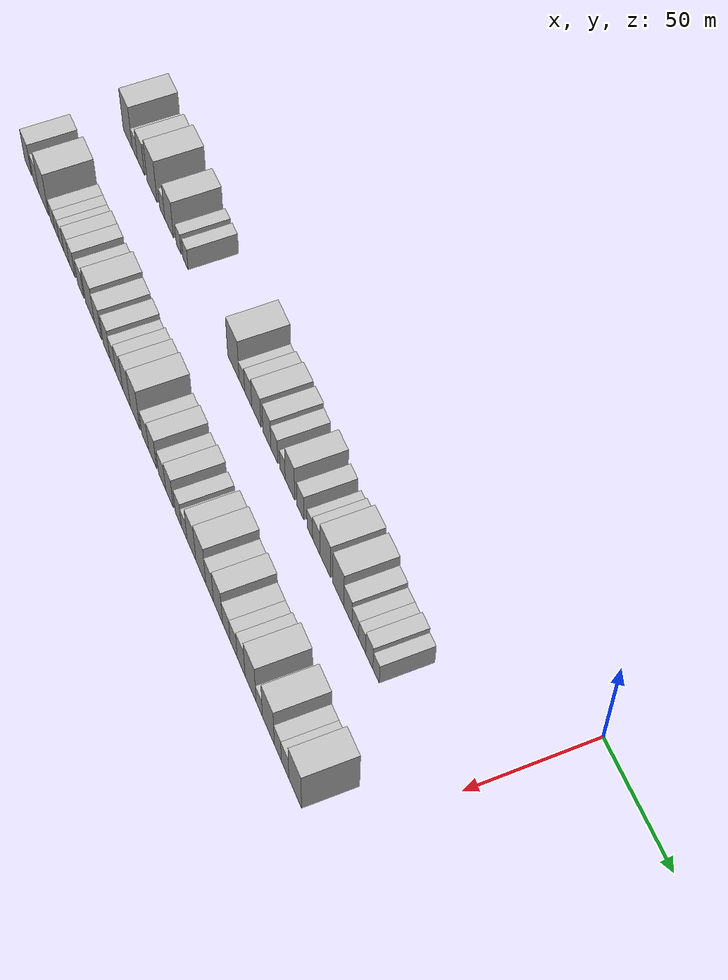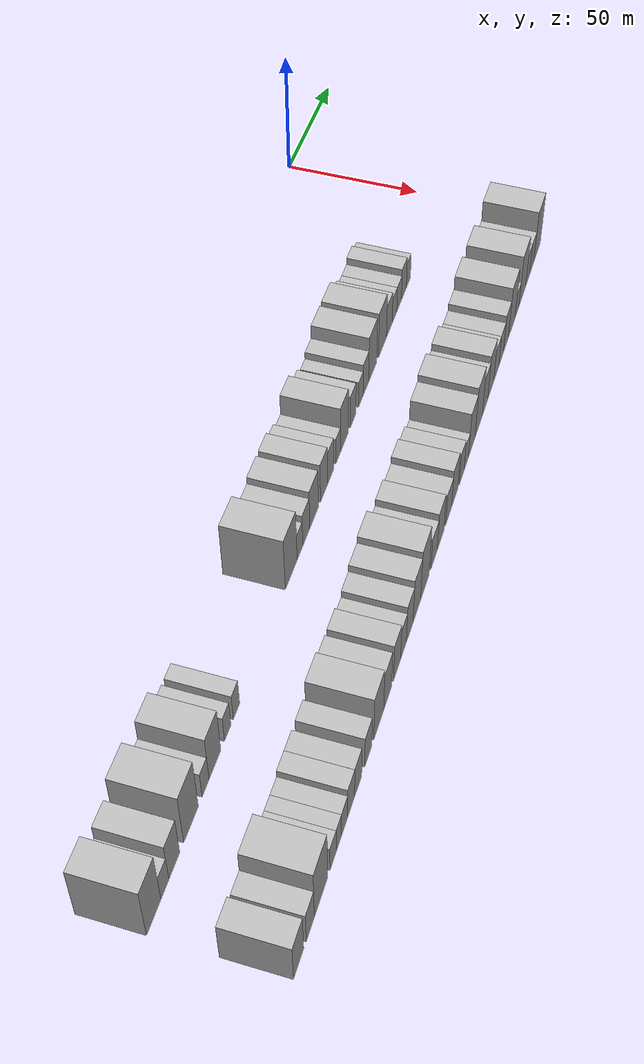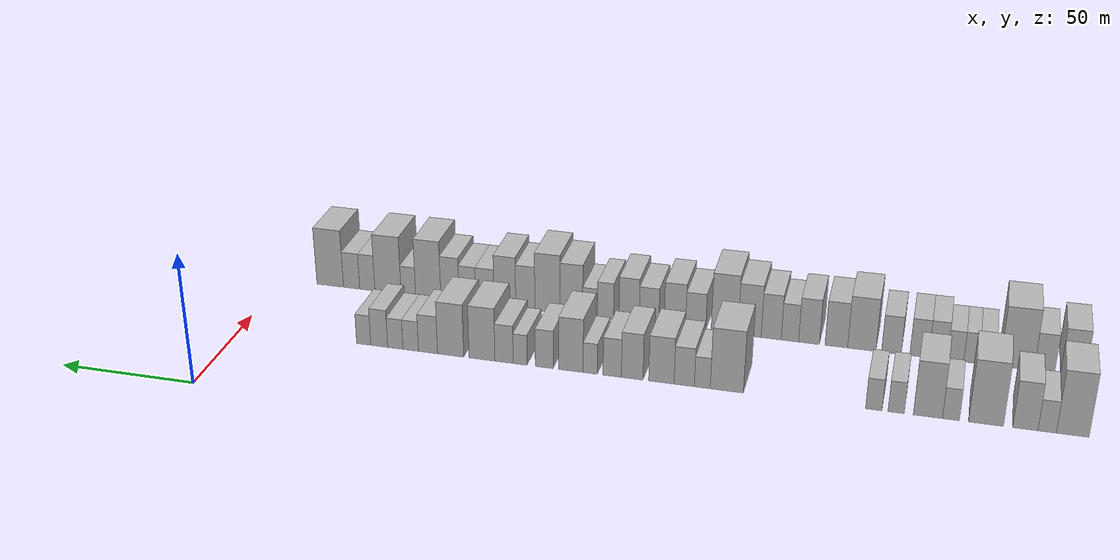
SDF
<sdf version="1.6">
 <world name="default">
  <model name="building_1">
   <static>1</static>
   <pose>50.0000 -294.8187 0 0.000000 0.000000 0.000000</pose>
   <link name="link">
    <pose>0 0 12.00 0 0 0</pose>
    <collision name="collision"><geometry><box><size>20.0000 10.3627 24.0000</size></box></geometry></collision>
    <visual name="visual">
     <cast_shadows>0</cast_shadows>
     <geometry><box><size>20.0000 10.3627 24.0000</size></box></geometry>
     <material>
      <script>
       <uri>model://HANNAS_wall/materials/scripts</uri>
       <uri>model://HANNAS_wall/materials/textures</uri>
       <name>vrc/HANNAS_wall</name>
      </script>
     </material>
    </visual>
   </link>
  </model>
  <model name="building_2">
   <static>1</static>
   <pose>50.0000 -286.7062 0 0.000000 0.000000 0.000000</pose>
   <link name="link">
    <pose>0 0 6.00 0 0 0</pose>
    <collision name="collision"><geometry><box><size>20.0000 5.8622 12.0000</size></box></geometry></collision>
    <visual name="visual">
     <cast_shadows>0</cast_shadows>
     <geometry><box><size>20.0000 5.8622 12.0000</size></box></geometry>
     <material>
      <script>
       <uri>model://HANNAS_wall/materials/scripts</uri>
       <uri>model://HANNAS_wall/materials/textures</uri>
       <name>vrc/HANNAS_wall</name>
      </script>
     </material>
    </visual>
   </link>
  </model>
  <model name="building_3">
   <static>1</static>
   <pose>50.0000 -279.7250 0 0.000000 0.000000 0.000000</pose>
   <link name="link">
    <pose>0 0 9.00 0 0 0</pose>
    <collision name="collision"><geometry><box><size>20.0000 8.1002 18.0000</size></box></geometry></collision>
    <visual name="visual">
     <cast_shadows>0</cast_shadows>
     <geometry><box><size>20.0000 8.1002 18.0000</size></box></geometry>
     <material>
      <script>
       <uri>model://HANNAS_wall/materials/scripts</uri>
       <uri>model://HANNAS_wall/materials/textures</uri>
       <name>vrc/HANNAS_wall</name>
      </script>
     </material>
    </visual>
   </link>
  </model>
  <model name="building_4">
   <static>1</static>
   <pose>50.0000 -267.0252 0 0.000000 0.000000 0.000000</pose>
   <link name="link">
    <pose>0 0 12.00 0 0 0</pose>
    <collision name="collision"><geometry><box><size>20.0000 11.2994 24.0000</size></box></geometry></collision>
    <visual name="visual">
     <cast_shadows>0</cast_shadows>
     <geometry><box><size>20.0000 11.2994 24.0000</size></box></geometry>
     <material>
      <script>
       <uri>model://HANNAS_wall/materials/scripts</uri>
       <uri>model://HANNAS_wall/materials/textures</uri>
       <name>vrc/HANNAS_wall</name>
      </script>
     </material>
    </visual>
   </link>
  </model>
  <model name="building_5">
   <static>1</static>
   <pose>50.0000 -255.5983 0 0.000000 0.000000 0.000000</pose>
   <link name="link">
    <pose>0 0 6.00 0 0 0</pose>
    <collision name="collision"><geometry><box><size>20.0000 5.5545 12.0000</size></box></geometry></collision>
    <visual name="visual">
     <cast_shadows>0</cast_shadows>
     <geometry><box><size>20.0000 5.5545 12.0000</size></box></geometry>
     <material>
      <script>
       <uri>model://HANNAS_wall/materials/scripts</uri>
       <uri>model://HANNAS_wall/materials/textures</uri>
       <name>vrc/HANNAS_wall</name>
      </script>
     </material>
    </visual>
   </link>
  </model>
  <model name="building_6">
   <static>1</static>
   <pose>50.0000 -248.0310 0 0.000000 0.000000 0.000000</pose>
   <link name="link">
    <pose>0 0 10.50 0 0 0</pose>
    <collision name="collision"><geometry><box><size>20.0000 9.5799 21.0000</size></box></geometry></collision>
    <visual name="visual">
     <cast_shadows>0</cast_shadows>
     <geometry><box><size>20.0000 9.5799 21.0000</size></box></geometry>
     <material>
      <script>
       <uri>model://HANNAS_wall/materials/scripts</uri>
       <uri>model://HANNAS_wall/materials/textures</uri>
       <name>vrc/HANNAS_wall</name>
      </script>
     </material>
    </visual>
   </link>
  </model>
  <model name="building_7">
   <static>1</static>
   <pose>50.0000 -237.5482 0 0.000000 0.000000 0.000000</pose>
   <link name="link">
    <pose>0 0 6.00 0 0 0</pose>
    <collision name="collision"><geometry><box><size>20.0000 5.3857 12.0000</size></box></geometry></collision>
    <visual name="visual">
     <cast_shadows>0</cast_shadows>
     <geometry><box><size>20.0000 5.3857 12.0000</size></box></geometry>
     <material>
      <script>
       <uri>model://HANNAS_wall/materials/scripts</uri>
       <uri>model://HANNAS_wall/materials/textures</uri>
       <name>vrc/HANNAS_wall</name>
      </script>
     </material>
    </visual>
   </link>
  </model>
  <model name="building_8">
   <static>1</static>
   <pose>50.0000 -230.1114 0 0.000000 0.000000 0.000000</pose>
   <link name="link">
    <pose>0 0 6.00 0 0 0</pose>
    <collision name="collision"><geometry><box><size>20.0000 5.4879 12.0000</size></box></geometry></collision>
    <visual name="visual">
     <cast_shadows>0</cast_shadows>
     <geometry><box><size>20.0000 5.4879 12.0000</size></box></geometry>
     <material>
      <script>
       <uri>model://HANNAS_wall/materials/scripts</uri>
       <uri>model://HANNAS_wall/materials/textures</uri>
       <name>vrc/HANNAS_wall</name>
      </script>
     </material>
    </visual>
   </link>
  </model>
  <model name="building_9">
   <static>1</static>
   <pose>50.0000 -180.0777 0 0.000000 0.000000 0.000000</pose>
   <link name="link">
    <pose>0 0 12.00 0 0 0</pose>
    <collision name="collision"><geometry><box><size>20.0000 11.5265 24.0000</size></box></geometry></collision>
    <visual name="visual">
     <cast_shadows>0</cast_shadows>
     <geometry><box><size>20.0000 11.5265 24.0000</size></box></geometry>
     <material>
      <script>
       <uri>model://HANNAS_wall/materials/scripts</uri>
       <uri>model://HANNAS_wall/materials/textures</uri>
       <name>vrc/HANNAS_wall</name>
      </script>
     </material>
    </visual>
   </link>
  </model>
  <model name="building_10">
   <static>1</static>
   <pose>50.0000 -171.5470 0 0.000000 0.000000 0.000000</pose>
   <link name="link">
    <pose>0 0 6.00 0 0 0</pose>
    <collision name="collision"><geometry><box><size>20.0000 5.5348 12.0000</size></box></geometry></collision>
    <visual name="visual">
     <cast_shadows>0</cast_shadows>
     <geometry><box><size>20.0000 5.5348 12.0000</size></box></geometry>
     <material>
      <script>
       <uri>model://HANNAS_wall/materials/scripts</uri>
       <uri>model://HANNAS_wall/materials/textures</uri>
       <name>vrc/HANNAS_wall</name>
      </script>
     </material>
    </visual>
   </link>
  </model>
  <model name="building_11">
   <static>1</static>
   <pose>50.0000 -165.2122 0 0.000000 0.000000 0.000000</pose>
   <link name="link">
    <pose>0 0 7.50 0 0 0</pose>
    <collision name="collision"><geometry><box><size>20.0000 7.1348 15.0000</size></box></geometry></collision>
    <visual name="visual">
     <cast_shadows>0</cast_shadows>
     <geometry><box><size>20.0000 7.1348 15.0000</size></box></geometry>
     <material>
      <script>
       <uri>model://HANNAS_wall/materials/scripts</uri>
       <uri>model://HANNAS_wall/materials/textures</uri>
       <name>vrc/HANNAS_wall</name>
      </script>
     </material>
    </visual>
   </link>
  </model>
  <model name="building_12">
   <static>1</static>
   <pose>50.0000 -157.1682 0 0.000000 0.000000 0.000000</pose>
   <link name="link">
    <pose>0 0 9.00 0 0 0</pose>
    <collision name="collision"><geometry><box><size>20.0000 8.9532 18.0000</size></box></geometry></collision>
    <visual name="visual">
     <cast_shadows>0</cast_shadows>
     <geometry><box><size>20.0000 8.9532 18.0000</size></box></geometry>
     <material>
      <script>
       <uri>model://HANNAS_wall/materials/scripts</uri>
       <uri>model://HANNAS_wall/materials/textures</uri>
       <name>vrc/HANNAS_wall</name>
      </script>
     </material>
    </visual>
   </link>
  </model>
  <model name="building_13">
   <static>1</static>
   <pose>50.0000 -146.8314 0 0.000000 0.000000 0.000000</pose>
   <link name="link">
    <pose>0 0 9.00 0 0 0</pose>
    <collision name="collision"><geometry><box><size>20.0000 7.7205 18.0000</size></box></geometry></collision>
    <visual name="visual">
     <cast_shadows>0</cast_shadows>
     <geometry><box><size>20.0000 7.7205 18.0000</size></box></geometry>
     <material>
      <script>
       <uri>model://HANNAS_wall/materials/scripts</uri>
       <uri>model://HANNAS_wall/materials/textures</uri>
       <name>vrc/HANNAS_wall</name>
      </script>
     </material>
    </visual>
   </link>
  </model>
  <model name="building_14">
   <static>1</static>
   <pose>50.0000 -139.6915 0 0.000000 0.000000 0.000000</pose>
   <link name="link">
    <pose>0 0 7.50 0 0 0</pose>
    <collision name="collision"><geometry><box><size>20.0000 6.5593 15.0000</size></box></geometry></collision>
    <visual name="visual">
     <cast_shadows>0</cast_shadows>
     <geometry><box><size>20.0000 6.5593 15.0000</size></box></geometry>
     <material>
      <script>
       <uri>model://HANNAS_wall/materials/scripts</uri>
       <uri>model://HANNAS_wall/materials/textures</uri>
       <name>vrc/HANNAS_wall</name>
      </script>
     </material>
    </visual>
   </link>
  </model>
  <model name="building_15">
   <static>1</static>
   <pose>50.0000 -131.8465 0 0.000000 0.000000 0.000000</pose>
   <link name="link">
    <pose>0 0 6.00 0 0 0</pose>
    <collision name="collision"><geometry><box><size>20.0000 5.1307 12.0000</size></box></geometry></collision>
    <visual name="visual">
     <cast_shadows>0</cast_shadows>
     <geometry><box><size>20.0000 5.1307 12.0000</size></box></geometry>
     <material>
      <script>
       <uri>model://HANNAS_wall/materials/scripts</uri>
       <uri>model://HANNAS_wall/materials/textures</uri>
       <name>vrc/HANNAS_wall</name>
      </script>
     </material>
    </visual>
   </link>
  </model>
  <model name="building_16">
   <static>1</static>
   <pose>50.0000 -124.8556 0 0.000000 0.000000 0.000000</pose>
   <link name="link">
    <pose>0 0 10.50 0 0 0</pose>
    <collision name="collision"><geometry><box><size>20.0000 8.8511 21.0000</size></box></geometry></collision>
    <visual name="visual">
     <cast_shadows>0</cast_shadows>
     <geometry><box><size>20.0000 8.8511 21.0000</size></box></geometry>
     <material>
      <script>
       <uri>model://HANNAS_wall/materials/scripts</uri>
       <uri>model://HANNAS_wall/materials/textures</uri>
       <name>vrc/HANNAS_wall</name>
      </script>
     </material>
    </visual>
   </link>
  </model>
  <model name="building_17">
   <static>1</static>
   <pose>50.0000 -115.1703 0 0.000000 0.000000 0.000000</pose>
   <link name="link">
    <pose>0 0 7.50 0 0 0</pose>
    <collision name="collision"><geometry><box><size>20.0000 6.5195 15.0000</size></box></geometry></collision>
    <visual name="visual">
     <cast_shadows>0</cast_shadows>
     <geometry><box><size>20.0000 6.5195 15.0000</size></box></geometry>
     <material>
      <script>
       <uri>model://HANNAS_wall/materials/scripts</uri>
       <uri>model://HANNAS_wall/materials/textures</uri>
       <name>vrc/HANNAS_wall</name>
      </script>
     </material>
    </visual>
   </link>
  </model>
  <model name="building_18">
   <static>1</static>
   <pose>50.0000 -106.3521 0 0.000000 0.000000 0.000000</pose>
   <link name="link">
    <pose>0 0 6.00 0 0 0</pose>
    <collision name="collision"><geometry><box><size>20.0000 5.1170 12.0000</size></box></geometry></collision>
    <visual name="visual">
     <cast_shadows>0</cast_shadows>
     <geometry><box><size>20.0000 5.1170 12.0000</size></box></geometry>
     <material>
      <script>
       <uri>model://HANNAS_wall/materials/scripts</uri>
       <uri>model://HANNAS_wall/materials/textures</uri>
       <name>vrc/HANNAS_wall</name>
      </script>
     </material>
    </visual>
   </link>
  </model>
  <model name="building_19">
   <static>1</static>
   <pose>50.0000 -100.4487 0 0.000000 0.000000 0.000000</pose>
   <link name="link">
    <pose>0 0 7.50 0 0 0</pose>
    <collision name="collision"><geometry><box><size>20.0000 6.6897 15.0000</size></box></geometry></collision>
    <visual name="visual">
     <cast_shadows>0</cast_shadows>
     <geometry><box><size>20.0000 6.6897 15.0000</size></box></geometry>
     <material>
      <script>
       <uri>model://HANNAS_wall/materials/scripts</uri>
       <uri>model://HANNAS_wall/materials/textures</uri>
       <name>vrc/HANNAS_wall</name>
      </script>
     </material>
    </visual>
   </link>
  </model>
  <model name="building_20">
   <static>1</static>
   <pose>50.0000 -92.3190 0 0.000000 0.000000 0.000000</pose>
   <link name="link">
    <pose>0 0 10.50 0 0 0</pose>
    <collision name="collision"><geometry><box><size>20.0000 9.5698 21.0000</size></box></geometry></collision>
    <visual name="visual">
     <cast_shadows>0</cast_shadows>
     <geometry><box><size>20.0000 9.5698 21.0000</size></box></geometry>
     <material>
      <script>
       <uri>model://HANNAS_wall/materials/scripts</uri>
       <uri>model://HANNAS_wall/materials/textures</uri>
       <name>vrc/HANNAS_wall</name>
      </script>
     </material>
    </visual>
   </link>
  </model>
  <model name="building_21">
   <static>1</static>
   <pose>50.0000 -80.6359 0 0.000000 0.000000 0.000000</pose>
   <link name="link">
    <pose>0 0 10.50 0 0 0</pose>
    <collision name="collision"><geometry><box><size>20.0000 9.7964 21.0000</size></box></geometry></collision>
    <visual name="visual">
     <cast_shadows>0</cast_shadows>
     <geometry><box><size>20.0000 9.7964 21.0000</size></box></geometry>
     <material>
      <script>
       <uri>model://HANNAS_wall/materials/scripts</uri>
       <uri>model://HANNAS_wall/materials/textures</uri>
       <name>vrc/HANNAS_wall</name>
      </script>
     </material>
    </visual>
   </link>
  </model>
  <model name="building_22">
   <static>1</static>
   <pose>50.0000 -72.1522 0 0.000000 0.000000 0.000000</pose>
   <link name="link">
    <pose>0 0 7.50 0 0 0</pose>
    <collision name="collision"><geometry><box><size>20.0000 7.1708 15.0000</size></box></geometry></collision>
    <visual name="visual">
     <cast_shadows>0</cast_shadows>
     <geometry><box><size>20.0000 7.1708 15.0000</size></box></geometry>
     <material>
      <script>
       <uri>model://HANNAS_wall/materials/scripts</uri>
       <uri>model://HANNAS_wall/materials/textures</uri>
       <name>vrc/HANNAS_wall</name>
      </script>
     </material>
    </visual>
   </link>
  </model>
  <model name="building_23">
   <static>1</static>
   <pose>50.0000 -65.6227 0 0.000000 0.000000 0.000000</pose>
   <link name="link">
    <pose>0 0 6.00 0 0 0</pose>
    <collision name="collision"><geometry><box><size>20.0000 5.8883 12.0000</size></box></geometry></collision>
    <visual name="visual">
     <cast_shadows>0</cast_shadows>
     <geometry><box><size>20.0000 5.8883 12.0000</size></box></geometry>
     <material>
      <script>
       <uri>model://HANNAS_wall/materials/scripts</uri>
       <uri>model://HANNAS_wall/materials/textures</uri>
       <name>vrc/HANNAS_wall</name>
      </script>
     </material>
    </visual>
   </link>
  </model>
  <model name="building_24">
   <static>1</static>
   <pose>50.0000 -59.7776 0 0.000000 0.000000 0.000000</pose>
   <link name="link">
    <pose>0 0 6.00 0 0 0</pose>
    <collision name="collision"><geometry><box><size>20.0000 5.8018 12.0000</size></box></geometry></collision>
    <visual name="visual">
     <cast_shadows>0</cast_shadows>
     <geometry><box><size>20.0000 5.8018 12.0000</size></box></geometry>
     <material>
      <script>
       <uri>model://HANNAS_wall/materials/scripts</uri>
       <uri>model://HANNAS_wall/materials/textures</uri>
       <name>vrc/HANNAS_wall</name>
      </script>
     </material>
    </visual>
   </link>
  </model>
  <model name="building_25">
   <static>1</static>
   <pose>50.0000 -53.6754 0 0.000000 0.000000 0.000000</pose>
   <link name="link">
    <pose>0 0 7.50 0 0 0</pose>
    <collision name="collision"><geometry><box><size>20.0000 6.4025 15.0000</size></box></geometry></collision>
    <visual name="visual">
     <cast_shadows>0</cast_shadows>
     <geometry><box><size>20.0000 6.4025 15.0000</size></box></geometry>
     <material>
      <script>
       <uri>model://HANNAS_wall/materials/scripts</uri>
       <uri>model://HANNAS_wall/materials/textures</uri>
       <name>vrc/HANNAS_wall</name>
      </script>
     </material>
    </visual>
   </link>
  </model>
  <model name="building_26">
   <static>1</static>
   <pose>50.0000 -47.7760 0 0.000000 0.000000 0.000000</pose>
   <link name="link">
    <pose>0 0 6.00 0 0 0</pose>
    <collision name="collision"><geometry><box><size>20.0000 5.3963 12.0000</size></box></geometry></collision>
    <visual name="visual">
     <cast_shadows>0</cast_shadows>
     <geometry><box><size>20.0000 5.3963 12.0000</size></box></geometry>
     <material>
      <script>
       <uri>model://HANNAS_wall/materials/scripts</uri>
       <uri>model://HANNAS_wall/materials/textures</uri>
       <name>vrc/HANNAS_wall</name>
      </script>
     </material>
    </visual>
   </link>
  </model>
  <model name="building_58">
   <static>1</static>
   <pose>90.0000 -295.7840 0 0.000000 0.000000 0.000000</pose>
   <link name="link">
    <pose>0 0 9.00 0 0 0</pose>
    <collision name="collision"><geometry><box><size>20.0000 8.4320 18.0000</size></box></geometry></collision>
    <visual name="visual">
     <cast_shadows>0</cast_shadows>
     <geometry><box><size>20.0000 8.4320 18.0000</size></box></geometry>
     <material>
      <script>
       <uri>model://HANNAS_wall/materials/scripts</uri>
       <uri>model://HANNAS_wall/materials/textures</uri>
       <name>vrc/HANNAS_wall</name>
      </script>
     </material>
    </visual>
   </link>
  </model>
  <model name="building_59">
   <static>1</static>
   <pose>90.0000 -286.0705 0 0.000000 0.000000 0.000000</pose>
   <link name="link">
    <pose>0 0 7.50 0 0 0</pose>
    <collision name="collision"><geometry><box><size>20.0000 6.9950 15.0000</size></box></geometry></collision>
    <visual name="visual">
     <cast_shadows>0</cast_shadows>
     <geometry><box><size>20.0000 6.9950 15.0000</size></box></geometry>
     <material>
      <script>
       <uri>model://HANNAS_wall/materials/scripts</uri>
       <uri>model://HANNAS_wall/materials/textures</uri>
       <name>vrc/HANNAS_wall</name>
      </script>
     </material>
    </visual>
   </link>
  </model>
  <model name="building_60">
   <static>1</static>
   <pose>90.0000 -276.7287 0 0.000000 0.000000 0.000000</pose>
   <link name="link">
    <pose>0 0 12.00 0 0 0</pose>
    <collision name="collision"><geometry><box><size>20.0000 11.6887 24.0000</size></box></geometry></collision>
    <visual name="visual">
     <cast_shadows>0</cast_shadows>
     <geometry><box><size>20.0000 11.6887 24.0000</size></box></geometry>
     <material>
      <script>
       <uri>model://HANNAS_wall/materials/scripts</uri>
       <uri>model://HANNAS_wall/materials/textures</uri>
       <name>vrc/HANNAS_wall</name>
      </script>
     </material>
    </visual>
   </link>
  </model>
  <model name="building_61">
   <static>1</static>
   <pose>90.0000 -266.0623 0 0.000000 0.000000 0.000000</pose>
   <link name="link">
    <pose>0 0 6.00 0 0 0</pose>
    <collision name="collision"><geometry><box><size>20.0000 5.6441 12.0000</size></box></geometry></collision>
    <visual name="visual">
     <cast_shadows>0</cast_shadows>
     <geometry><box><size>20.0000 5.6441 12.0000</size></box></geometry>
     <material>
      <script>
       <uri>model://HANNAS_wall/materials/scripts</uri>
       <uri>model://HANNAS_wall/materials/textures</uri>
       <name>vrc/HANNAS_wall</name>
      </script>
     </material>
    </visual>
   </link>
  </model>
  <model name="building_62">
   <static>1</static>
   <pose>90.0000 -260.8113 0 0.000000 0.000000 0.000000</pose>
   <link name="link">
    <pose>0 0 6.00 0 0 0</pose>
    <collision name="collision"><geometry><box><size>20.0000 4.8578 12.0000</size></box></geometry></collision>
    <visual name="visual">
     <cast_shadows>0</cast_shadows>
     <geometry><box><size>20.0000 4.8578 12.0000</size></box></geometry>
     <material>
      <script>
       <uri>model://HANNAS_wall/materials/scripts</uri>
       <uri>model://HANNAS_wall/materials/textures</uri>
       <name>vrc/HANNAS_wall</name>
      </script>
     </material>
    </visual>
   </link>
  </model>
  <model name="building_63">
   <static>1</static>
   <pose>90.0000 -255.5425 0 0.000000 0.000000 0.000000</pose>
   <link name="link">
    <pose>0 0 6.00 0 0 0</pose>
    <collision name="collision"><geometry><box><size>20.0000 5.6797 12.0000</size></box></geometry></collision>
    <visual name="visual">
     <cast_shadows>0</cast_shadows>
     <geometry><box><size>20.0000 5.6797 12.0000</size></box></geometry>
     <material>
      <script>
       <uri>model://HANNAS_wall/materials/scripts</uri>
       <uri>model://HANNAS_wall/materials/textures</uri>
       <name>vrc/HANNAS_wall</name>
      </script>
     </material>
    </visual>
   </link>
  </model>
  <model name="building_64">
   <static>1</static>
   <pose>90.0000 -249.4486 0 0.000000 0.000000 0.000000</pose>
   <link name="link">
    <pose>0 0 7.50 0 0 0</pose>
    <collision name="collision"><geometry><box><size>20.0000 6.5082 15.0000</size></box></geometry></collision>
    <visual name="visual">
     <cast_shadows>0</cast_shadows>
     <geometry><box><size>20.0000 6.5082 15.0000</size></box></geometry>
     <material>
      <script>
       <uri>model://HANNAS_wall/materials/scripts</uri>
       <uri>model://HANNAS_wall/materials/textures</uri>
       <name>vrc/HANNAS_wall</name>
      </script>
     </material>
    </visual>
   </link>
  </model>
  <model name="building_65">
   <static>1</static>
   <pose>90.0000 -242.8609 0 0.000000 0.000000 0.000000</pose>
   <link name="link">
    <pose>0 0 7.50 0 0 0</pose>
    <collision name="collision"><geometry><box><size>20.0000 6.6670 15.0000</size></box></geometry></collision>
    <visual name="visual">
     <cast_shadows>0</cast_shadows>
     <geometry><box><size>20.0000 6.6670 15.0000</size></box></geometry>
     <material>
      <script>
       <uri>model://HANNAS_wall/materials/scripts</uri>
       <uri>model://HANNAS_wall/materials/textures</uri>
       <name>vrc/HANNAS_wall</name>
      </script>
     </material>
    </visual>
   </link>
  </model>
  <model name="building_66">
   <static>1</static>
   <pose>90.0000 -233.0552 0 0.000000 0.000000 0.000000</pose>
   <link name="link">
    <pose>0 0 7.50 0 0 0</pose>
    <collision name="collision"><geometry><box><size>20.0000 6.9445 15.0000</size></box></geometry></collision>
    <visual name="visual">
     <cast_shadows>0</cast_shadows>
     <geometry><box><size>20.0000 6.9445 15.0000</size></box></geometry>
     <material>
      <script>
       <uri>model://HANNAS_wall/materials/scripts</uri>
       <uri>model://HANNAS_wall/materials/textures</uri>
       <name>vrc/HANNAS_wall</name>
      </script>
     </material>
    </visual>
   </link>
  </model>
  <model name="building_67">
   <static>1</static>
   <pose>90.0000 -222.5460 0 0.000000 0.000000 0.000000</pose>
   <link name="link">
    <pose>0 0 10.50 0 0 0</pose>
    <collision name="collision"><geometry><box><size>20.0000 10.0738 21.0000</size></box></geometry></collision>
    <visual name="visual">
     <cast_shadows>0</cast_shadows>
     <geometry><box><size>20.0000 10.0738 21.0000</size></box></geometry>
     <material>
      <script>
       <uri>model://HANNAS_wall/materials/scripts</uri>
       <uri>model://HANNAS_wall/materials/textures</uri>
       <name>vrc/HANNAS_wall</name>
      </script>
     </material>
    </visual>
   </link>
  </model>
  <model name="building_68">
   <static>1</static>
   <pose>90.0000 -213.4605 0 0.000000 0.000000 0.000000</pose>
   <link name="link">
    <pose>0 0 9.00 0 0 0</pose>
    <collision name="collision"><geometry><box><size>20.0000 8.0970 18.0000</size></box></geometry></collision>
    <visual name="visual">
     <cast_shadows>0</cast_shadows>
     <geometry><box><size>20.0000 8.0970 18.0000</size></box></geometry>
     <material>
      <script>
       <uri>model://HANNAS_wall/materials/scripts</uri>
       <uri>model://HANNAS_wall/materials/textures</uri>
       <name>vrc/HANNAS_wall</name>
      </script>
     </material>
    </visual>
   </link>
  </model>
  <model name="building_69">
   <static>1</static>
   <pose>90.0000 -203.6437 0 0.000000 0.000000 0.000000</pose>
   <link name="link">
    <pose>0 0 9.00 0 0 0</pose>
    <collision name="collision"><geometry><box><size>20.0000 7.5366 18.0000</size></box></geometry></collision>
    <visual name="visual">
     <cast_shadows>0</cast_shadows>
     <geometry><box><size>20.0000 7.5366 18.0000</size></box></geometry>
     <material>
      <script>
       <uri>model://HANNAS_wall/materials/scripts</uri>
       <uri>model://HANNAS_wall/materials/textures</uri>
       <name>vrc/HANNAS_wall</name>
      </script>
     </material>
    </visual>
   </link>
  </model>
  <model name="building_70">
   <static>1</static>
   <pose>90.0000 -196.7364 0 0.000000 0.000000 0.000000</pose>
   <link name="link">
    <pose>0 0 7.50 0 0 0</pose>
    <collision name="collision"><geometry><box><size>20.0000 6.2781 15.0000</size></box></geometry></collision>
    <visual name="visual">
     <cast_shadows>0</cast_shadows>
     <geometry><box><size>20.0000 6.2781 15.0000</size></box></geometry>
     <material>
      <script>
       <uri>model://HANNAS_wall/materials/scripts</uri>
       <uri>model://HANNAS_wall/materials/textures</uri>
       <name>vrc/HANNAS_wall</name>
      </script>
     </material>
    </visual>
   </link>
  </model>
  <model name="building_71">
   <static>1</static>
   <pose>90.0000 -189.9348 0 0.000000 0.000000 0.000000</pose>
   <link name="link">
    <pose>0 0 9.00 0 0 0</pose>
    <collision name="collision"><geometry><box><size>20.0000 7.3252 18.0000</size></box></geometry></collision>
    <visual name="visual">
     <cast_shadows>0</cast_shadows>
     <geometry><box><size>20.0000 7.3252 18.0000</size></box></geometry>
     <material>
      <script>
       <uri>model://HANNAS_wall/materials/scripts</uri>
       <uri>model://HANNAS_wall/materials/textures</uri>
       <name>vrc/HANNAS_wall</name>
      </script>
     </material>
    </visual>
   </link>
  </model>
  <model name="building_72">
   <static>1</static>
   <pose>90.0000 -182.0225 0 0.000000 0.000000 0.000000</pose>
   <link name="link">
    <pose>0 0 10.50 0 0 0</pose>
    <collision name="collision"><geometry><box><size>20.0000 8.4993 21.0000</size></box></geometry></collision>
    <visual name="visual">
     <cast_shadows>0</cast_shadows>
     <geometry><box><size>20.0000 8.4993 21.0000</size></box></geometry>
     <material>
      <script>
       <uri>model://HANNAS_wall/materials/scripts</uri>
       <uri>model://HANNAS_wall/materials/textures</uri>
       <name>vrc/HANNAS_wall</name>
      </script>
     </material>
    </visual>
   </link>
  </model>
  <model name="building_73">
   <static>1</static>
   <pose>90.0000 -172.8082 0 0.000000 0.000000 0.000000</pose>
   <link name="link">
    <pose>0 0 12.00 0 0 0</pose>
    <collision name="collision"><geometry><box><size>20.0000 9.9294 24.0000</size></box></geometry></collision>
    <visual name="visual">
     <cast_shadows>0</cast_shadows>
     <geometry><box><size>20.0000 9.9294 24.0000</size></box></geometry>
     <material>
      <script>
       <uri>model://HANNAS_wall/materials/scripts</uri>
       <uri>model://HANNAS_wall/materials/textures</uri>
       <name>vrc/HANNAS_wall</name>
      </script>
     </material>
    </visual>
   </link>
  </model>
  <model name="building_74">
   <static>1</static>
   <pose>90.0000 -162.1089 0 0.000000 0.000000 0.000000</pose>
   <link name="link">
    <pose>0 0 7.50 0 0 0</pose>
    <collision name="collision"><geometry><box><size>20.0000 7.4692 15.0000</size></box></geometry></collision>
    <visual name="visual">
     <cast_shadows>0</cast_shadows>
     <geometry><box><size>20.0000 7.4692 15.0000</size></box></geometry>
     <material>
      <script>
       <uri>model://HANNAS_wall/materials/scripts</uri>
       <uri>model://HANNAS_wall/materials/textures</uri>
       <name>vrc/HANNAS_wall</name>
      </script>
     </material>
    </visual>
   </link>
  </model>
  <model name="building_75">
   <static>1</static>
   <pose>90.0000 -154.3419 0 0.000000 0.000000 0.000000</pose>
   <link name="link">
    <pose>0 0 9.00 0 0 0</pose>
    <collision name="collision"><geometry><box><size>20.0000 8.0649 18.0000</size></box></geometry></collision>
    <visual name="visual">
     <cast_shadows>0</cast_shadows>
     <geometry><box><size>20.0000 8.0649 18.0000</size></box></geometry>
     <material>
      <script>
       <uri>model://HANNAS_wall/materials/scripts</uri>
       <uri>model://HANNAS_wall/materials/textures</uri>
       <name>vrc/HANNAS_wall</name>
      </script>
     </material>
    </visual>
   </link>
  </model>
  <model name="building_76">
   <static>1</static>
   <pose>90.0000 -144.6196 0 0.000000 0.000000 0.000000</pose>
   <link name="link">
    <pose>0 0 7.50 0 0 0</pose>
    <collision name="collision"><geometry><box><size>20.0000 7.3797 15.0000</size></box></geometry></collision>
    <visual name="visual">
     <cast_shadows>0</cast_shadows>
     <geometry><box><size>20.0000 7.3797 15.0000</size></box></geometry>
     <material>
      <script>
       <uri>model://HANNAS_wall/materials/scripts</uri>
       <uri>model://HANNAS_wall/materials/textures</uri>
       <name>vrc/HANNAS_wall</name>
      </script>
     </material>
    </visual>
   </link>
  </model>
  <model name="building_77">
   <static>1</static>
   <pose>90.0000 -137.0956 0 0.000000 0.000000 0.000000</pose>
   <link name="link">
    <pose>0 0 9.00 0 0 0</pose>
    <collision name="collision"><geometry><box><size>20.0000 7.6683 18.0000</size></box></geometry></collision>
    <visual name="visual">
     <cast_shadows>0</cast_shadows>
     <geometry><box><size>20.0000 7.6683 18.0000</size></box></geometry>
     <material>
      <script>
       <uri>model://HANNAS_wall/materials/scripts</uri>
       <uri>model://HANNAS_wall/materials/textures</uri>
       <name>vrc/HANNAS_wall</name>
      </script>
     </material>
    </visual>
   </link>
  </model>
  <model name="building_78">
   <static>1</static>
   <pose>90.0000 -128.1953 0 0.000000 0.000000 0.000000</pose>
   <link name="link">
    <pose>0 0 7.50 0 0 0</pose>
    <collision name="collision"><geometry><box><size>20.0000 6.1325 15.0000</size></box></geometry></collision>
    <visual name="visual">
     <cast_shadows>0</cast_shadows>
     <geometry><box><size>20.0000 6.1325 15.0000</size></box></geometry>
     <material>
      <script>
       <uri>model://HANNAS_wall/materials/scripts</uri>
       <uri>model://HANNAS_wall/materials/textures</uri>
       <name>vrc/HANNAS_wall</name>
      </script>
     </material>
    </visual>
   </link>
  </model>
  <model name="building_79">
   <static>1</static>
   <pose>90.0000 -122.2714 0 0.000000 0.000000 0.000000</pose>
   <link name="link">
    <pose>0 0 6.00 0 0 0</pose>
    <collision name="collision"><geometry><box><size>20.0000 5.7151 12.0000</size></box></geometry></collision>
    <visual name="visual">
     <cast_shadows>0</cast_shadows>
     <geometry><box><size>20.0000 5.7151 12.0000</size></box></geometry>
     <material>
      <script>
       <uri>model://HANNAS_wall/materials/scripts</uri>
       <uri>model://HANNAS_wall/materials/textures</uri>
       <name>vrc/HANNAS_wall</name>
      </script>
     </material>
    </visual>
   </link>
  </model>
  <model name="building_80">
   <static>1</static>
   <pose>90.0000 -115.1048 0 0.000000 0.000000 0.000000</pose>
   <link name="link">
    <pose>0 0 10.50 0 0 0</pose>
    <collision name="collision"><geometry><box><size>20.0000 8.6182 21.0000</size></box></geometry></collision>
    <visual name="visual">
     <cast_shadows>0</cast_shadows>
     <geometry><box><size>20.0000 8.6182 21.0000</size></box></geometry>
     <material>
      <script>
       <uri>model://HANNAS_wall/materials/scripts</uri>
       <uri>model://HANNAS_wall/materials/textures</uri>
       <name>vrc/HANNAS_wall</name>
      </script>
     </material>
    </visual>
   </link>
  </model>
  <model name="building_81">
   <static>1</static>
   <pose>90.0000 -105.9080 0 0.000000 0.000000 0.000000</pose>
   <link name="link">
    <pose>0 0 12.00 0 0 0</pose>
    <collision name="collision"><geometry><box><size>20.0000 9.7753 24.0000</size></box></geometry></collision>
    <visual name="visual">
     <cast_shadows>0</cast_shadows>
     <geometry><box><size>20.0000 9.7753 24.0000</size></box></geometry>
     <material>
      <script>
       <uri>model://HANNAS_wall/materials/scripts</uri>
       <uri>model://HANNAS_wall/materials/textures</uri>
       <name>vrc/HANNAS_wall</name>
      </script>
     </material>
    </visual>
   </link>
  </model>
  <model name="building_82">
   <static>1</static>
   <pose>90.0000 -97.2890 0 0.000000 0.000000 0.000000</pose>
   <link name="link">
    <pose>0 0 9.00 0 0 0</pose>
    <collision name="collision"><geometry><box><size>20.0000 7.4627 18.0000</size></box></geometry></collision>
    <visual name="visual">
     <cast_shadows>0</cast_shadows>
     <geometry><box><size>20.0000 7.4627 18.0000</size></box></geometry>
     <material>
      <script>
       <uri>model://HANNAS_wall/materials/scripts</uri>
       <uri>model://HANNAS_wall/materials/textures</uri>
       <name>vrc/HANNAS_wall</name>
      </script>
     </material>
    </visual>
   </link>
  </model>
  <model name="building_83">
   <static>1</static>
   <pose>90.0000 -89.3151 0 0.000000 0.000000 0.000000</pose>
   <link name="link">
    <pose>0 0 10.50 0 0 0</pose>
    <collision name="collision"><geometry><box><size>20.0000 8.4850 21.0000</size></box></geometry></collision>
    <visual name="visual">
     <cast_shadows>0</cast_shadows>
     <geometry><box><size>20.0000 8.4850 21.0000</size></box></geometry>
     <material>
      <script>
       <uri>model://HANNAS_wall/materials/scripts</uri>
       <uri>model://HANNAS_wall/materials/textures</uri>
       <name>vrc/HANNAS_wall</name>
      </script>
     </material>
    </visual>
   </link>
  </model>
  <model name="building_84">
   <static>1</static>
   <pose>90.0000 -81.4426 0 0.000000 0.000000 0.000000</pose>
   <link name="link">
    <pose>0 0 7.50 0 0 0</pose>
    <collision name="collision"><geometry><box><size>20.0000 7.2601 15.0000</size></box></geometry></collision>
    <visual name="visual">
     <cast_shadows>0</cast_shadows>
     <geometry><box><size>20.0000 7.2601 15.0000</size></box></geometry>
     <material>
      <script>
       <uri>model://HANNAS_wall/materials/scripts</uri>
       <uri>model://HANNAS_wall/materials/textures</uri>
       <name>vrc/HANNAS_wall</name>
      </script>
     </material>
    </visual>
   </link>
  </model>
  <model name="building_85">
   <static>1</static>
   <pose>90.0000 -74.5422 0 0.000000 0.000000 0.000000</pose>
   <link name="link">
    <pose>0 0 7.50 0 0 0</pose>
    <collision name="collision"><geometry><box><size>20.0000 6.5407 15.0000</size></box></geometry></collision>
    <visual name="visual">
     <cast_shadows>0</cast_shadows>
     <geometry><box><size>20.0000 6.5407 15.0000</size></box></geometry>
     <material>
      <script>
       <uri>model://HANNAS_wall/materials/scripts</uri>
       <uri>model://HANNAS_wall/materials/textures</uri>
       <name>vrc/HANNAS_wall</name>
      </script>
     </material>
    </visual>
   </link>
  </model>
  <model name="building_86">
   <static>1</static>
   <pose>90.0000 -67.6444 0 0.000000 0.000000 0.000000</pose>
   <link name="link">
    <pose>0 0 9.00 0 0 0</pose>
    <collision name="collision"><geometry><box><size>20.0000 7.2549 18.0000</size></box></geometry></collision>
    <visual name="visual">
     <cast_shadows>0</cast_shadows>
     <geometry><box><size>20.0000 7.2549 18.0000</size></box></geometry>
     <material>
      <script>
       <uri>model://HANNAS_wall/materials/scripts</uri>
       <uri>model://HANNAS_wall/materials/textures</uri>
       <name>vrc/HANNAS_wall</name>
      </script>
     </material>
    </visual>
   </link>
  </model>
  <model name="building_87">
   <static>1</static>
   <pose>90.0000 -58.9798 0 0.000000 0.000000 0.000000</pose>
   <link name="link">
    <pose>0 0 12.00 0 0 0</pose>
    <collision name="collision"><geometry><box><size>20.0000 10.0742 24.0000</size></box></geometry></collision>
    <visual name="visual">
     <cast_shadows>0</cast_shadows>
     <geometry><box><size>20.0000 10.0742 24.0000</size></box></geometry>
     <material>
      <script>
       <uri>model://HANNAS_wall/materials/scripts</uri>
       <uri>model://HANNAS_wall/materials/textures</uri>
       <name>vrc/HANNAS_wall</name>
      </script>
     </material>
    </visual>
   </link>
  </model>
  <model name="building_88">
   <static>1</static>
   <pose>90.0000 -51.0171 0 0.000000 0.000000 0.000000</pose>
   <link name="link">
    <pose>0 0 6.00 0 0 0</pose>
    <collision name="collision"><geometry><box><size>20.0000 5.8513 12.0000</size></box></geometry></collision>
    <visual name="visual">
     <cast_shadows>0</cast_shadows>
     <geometry><box><size>20.0000 5.8513 12.0000</size></box></geometry>
     <material>
      <script>
       <uri>model://HANNAS_wall/materials/scripts</uri>
       <uri>model://HANNAS_wall/materials/textures</uri>
       <name>vrc/HANNAS_wall</name>
      </script>
     </material>
    </visual>
   </link>
  </model>
  <model name="building_89">
   <static>1</static>
   <pose>90.0000 -42.8035 0 0.000000 0.000000 0.000000</pose>
   <link name="link">
    <pose>0 0 12.00 0 0 0</pose>
    <collision name="collision"><geometry><box><size>20.0000 10.5758 24.0000</size></box></geometry></collision>
    <visual name="visual">
     <cast_shadows>0</cast_shadows>
     <geometry><box><size>20.0000 10.5758 24.0000</size></box></geometry>
     <material>
      <script>
       <uri>model://HANNAS_wall/materials/scripts</uri>
       <uri>model://HANNAS_wall/materials/textures</uri>
       <name>vrc/HANNAS_wall</name>
      </script>
     </material>
    </visual>
   </link>
  </model>
  <model name="building_90">
   <static>1</static>
   <pose>90.0000 -34.4217 0 0.000000 0.000000 0.000000</pose>
   <link name="link">
    <pose>0 0 7.50 0 0 0</pose>
    <collision name="collision"><geometry><box><size>20.0000 6.1878 15.0000</size></box></geometry></collision>
    <visual name="visual">
     <cast_shadows>0</cast_shadows>
     <geometry><box><size>20.0000 6.1878 15.0000</size></box></geometry>
     <material>
      <script>
       <uri>model://HANNAS_wall/materials/scripts</uri>
       <uri>model://HANNAS_wall/materials/textures</uri>
       <name>vrc/HANNAS_wall</name>
      </script>
     </material>
    </visual>
   </link>
  </model>
  <model name="building_91">
   <static>1</static>
   <pose>90.0000 -28.0284 0 0.000000 0.000000 0.000000</pose>
   <link name="link">
    <pose>0 0 7.50 0 0 0</pose>
    <collision name="collision"><geometry><box><size>20.0000 6.5988 15.0000</size></box></geometry></collision>
    <visual name="visual">
     <cast_shadows>0</cast_shadows>
     <geometry><box><size>20.0000 6.5988 15.0000</size></box></geometry>
     <material>
      <script>
       <uri>model://HANNAS_wall/materials/scripts</uri>
       <uri>model://HANNAS_wall/materials/textures</uri>
       <name>vrc/HANNAS_wall</name>
      </script>
     </material>
    </visual>
   </link>
  </model>
  <model name="building_92">
   <static>1</static>
   <pose>90.0000 -19.2814 0 0.000000 0.000000 0.000000</pose>
   <link name="link">
    <pose>0 0 12.00 0 0 0</pose>
    <collision name="collision"><geometry><box><size>20.0000 10.8951 24.0000</size></box></geometry></collision>
    <visual name="visual">
     <cast_shadows>0</cast_shadows>
     <geometry><box><size>20.0000 10.8951 24.0000</size></box></geometry>
     <material>
      <script>
       <uri>model://HANNAS_wall/materials/scripts</uri>
       <uri>model://HANNAS_wall/materials/textures</uri>
       <name>vrc/HANNAS_wall</name>
      </script>
     </material>
    </visual>
   </link>
  </model>
 </world>
</sdf>
